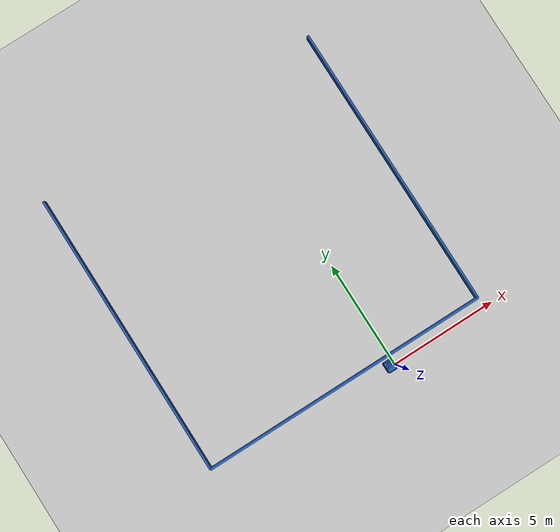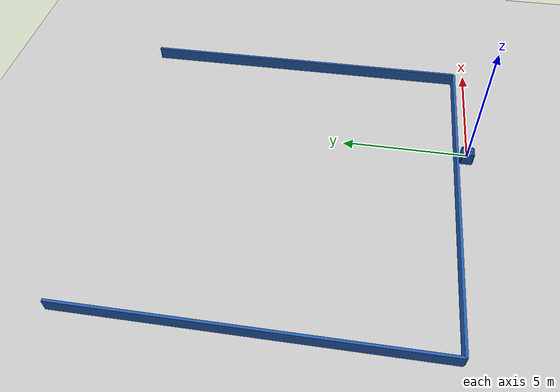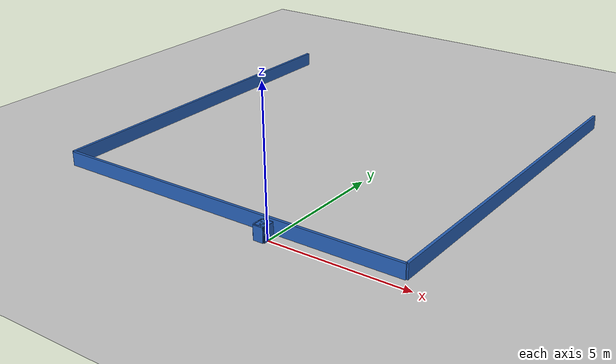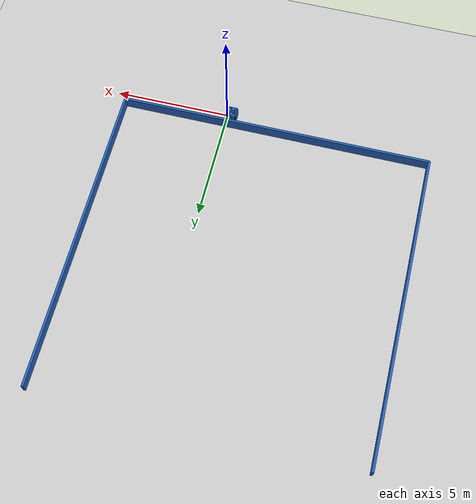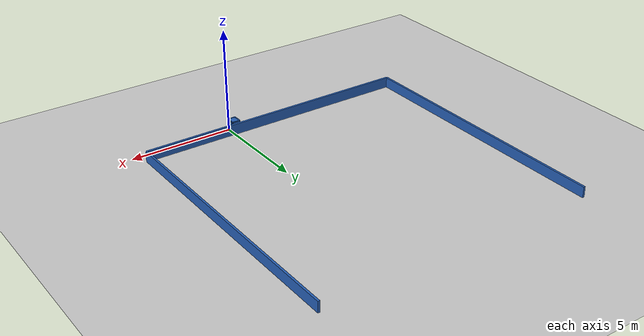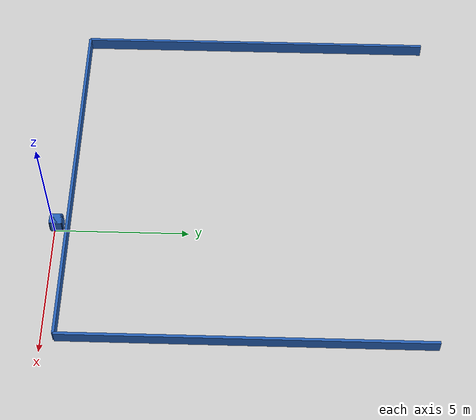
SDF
<?xml version="1.0" ?>
    <sdf version="1.5">
      <world name="default">
        <!-- A global light source -->
        <include>
          <uri>model://sun</uri>
        </include>
        <!-- A ground plane -->
        <include>
          <uri>model://ground_plane</uri>
        </include>

    <model name='libopen_space_final_T2B_83_66'>
      <static>1</static>
      <pose frame=''>-0.225000 0.075000 0.000000 0.000000 0.000000 0.000000</pose>
      <link name='link'>
        <inertial>
          <mass>1</mass>
          <inertia>
            <ixx>0.145833</ixx>
            <ixy>0</ixy>
            <ixz>0</ixz>
            <iyy>0.145833</iyy>
            <iyz>0</iyz>
            <izz>0.125</izz>
          </inertia>
        </inertial>
        <collision name='collision'>
          <geometry>
            <box>
              <size>0.33 0.37 1</size>
            </box>
          </geometry>
          <max_contacts>10</max_contacts>
          <surface>
            <contact>
              <ode/>
            </contact>
            <bounce/>
            <friction>
              <torsional>
                <ode/>
              </torsional>
              <ode/>
            </friction>
          </surface>
        </collision>
        <visual name='visual'>
          <geometry>
            <box>
              <size>0.33 0.37 1</size>
            </box>
          </geometry>
	    <material>
              <ambient>0.152000 0.379000 0.720000 1</ambient>
	      <diffuse>0.152000 0.379000 0.720000 1</diffuse>
          </material>
          <material>
            <script>
              <name>Gazebo/Grey</name>
              <uri>file://media/materials/scripts/gazebo.material</uri>
            </script>
          </material>
        </visual>
        <self_collide>0</self_collide>
        <kinematic>0</kinematic>
        <gravity>1</gravity>
      </link>
      <plugin name='libopen_space_final_T2B_83_66' filename='libopen_space_final_T2B_83_66.so'/>
    </model>

    <model name='libopen_space_final_T2B_67_46'>
      <static>1</static>
      <pose frame=''>-0.225000 0.075000 0.000000 0.000000 0.000000 0.000000</pose>
      <link name='link'>
        <inertial>
          <mass>1</mass>
          <inertia>
            <ixx>0.145833</ixx>
            <ixy>0</ixy>
            <ixz>0</ixz>
            <iyy>0.145833</iyy>
            <iyz>0</iyz>
            <izz>0.125</izz>
          </inertia>
        </inertial>
        <collision name='collision'>
          <geometry>
            <box>
              <size>0.12 0.33 1</size>
            </box>
          </geometry>
          <max_contacts>10</max_contacts>
          <surface>
            <contact>
              <ode/>
            </contact>
            <bounce/>
            <friction>
              <torsional>
                <ode/>
              </torsional>
              <ode/>
            </friction>
          </surface>
        </collision>
        <visual name='visual'>
          <geometry>
            <box>
              <size>0.12 0.33 1</size>
            </box>
          </geometry>
	    <material>
              <ambient>0.152000 0.379000 0.720000 1</ambient>
	      <diffuse>0.152000 0.379000 0.720000 1</diffuse>
          </material>
          <material>
            <script>
              <name>Gazebo/Grey</name>
              <uri>file://media/materials/scripts/gazebo.material</uri>
            </script>
          </material>
        </visual>
        <self_collide>0</self_collide>
        <kinematic>0</kinematic>
        <gravity>1</gravity>
      </link>
      <plugin name='libopen_space_final_T2B_67_46' filename='libopen_space_final_T2B_67_46.so'/>
    </model>

    <model name='libopen_space_final_T2B_57_10'>
      <static>1</static>
      <pose frame=''>-0.225000 0.075000 0.000000 0.000000 0.000000 0.000000</pose>
      <link name='link'>
        <inertial>
          <mass>1</mass>
          <inertia>
            <ixx>0.145833</ixx>
            <ixy>0</ixy>
            <ixz>0</ixz>
            <iyy>0.145833</iyy>
            <iyz>0</iyz>
            <izz>0.125</izz>
          </inertia>
        </inertial>
        <collision name='collision'>
          <geometry>
            <box>
              <size>0.12 0.27 1</size>
            </box>
          </geometry>
          <max_contacts>10</max_contacts>
          <surface>
            <contact>
              <ode/>
            </contact>
            <bounce/>
            <friction>
              <torsional>
                <ode/>
              </torsional>
              <ode/>
            </friction>
          </surface>
        </collision>
        <visual name='visual'>
          <geometry>
            <box>
              <size>0.12 0.27 1</size>
            </box>
          </geometry>
	    <material>
              <ambient>0.152000 0.379000 0.720000 1</ambient>
	      <diffuse>0.152000 0.379000 0.720000 1</diffuse>
          </material>
          <material>
            <script>
              <name>Gazebo/Grey</name>
              <uri>file://media/materials/scripts/gazebo.material</uri>
            </script>
          </material>
        </visual>
        <self_collide>0</self_collide>
        <kinematic>0</kinematic>
        <gravity>1</gravity>
      </link>
      <plugin name='libopen_space_final_T2B_57_10' filename='libopen_space_final_T2B_57_10.so'/>
    </model>

    <model name='libopen_space_final_T2B_80_70'>
      <static>1</static>
      <pose frame=''>-0.225000 0.075000 0.000000 0.000000 0.000000 0.000000</pose>
      <link name='link'>
        <inertial>
          <mass>1</mass>
          <inertia>
            <ixx>0.145833</ixx>
            <ixy>0</ixy>
            <ixz>0</ixz>
            <iyy>0.145833</iyy>
            <iyz>0</iyz>
            <izz>0.125</izz>
          </inertia>
        </inertial>
        <collision name='collision'>
          <geometry>
            <box>
              <size>0.37 0.40 1</size>
            </box>
          </geometry>
          <max_contacts>10</max_contacts>
          <surface>
            <contact>
              <ode/>
            </contact>
            <bounce/>
            <friction>
              <torsional>
                <ode/>
              </torsional>
              <ode/>
            </friction>
          </surface>
        </collision>
        <visual name='visual'>
          <geometry>
            <box>
              <size>0.37 0.40 1</size>
            </box>
          </geometry>
	    <material>
              <ambient>0.152000 0.379000 0.720000 1</ambient>
	      <diffuse>0.152000 0.379000 0.720000 1</diffuse>
          </material>
          <material>
            <script>
              <name>Gazebo/Grey</name>
              <uri>file://media/materials/scripts/gazebo.material</uri>
            </script>
          </material>
        </visual>
        <self_collide>0</self_collide>
        <kinematic>0</kinematic>
        <gravity>1</gravity>
      </link>
      <plugin name='libopen_space_final_T2B_80_70' filename='libopen_space_final_T2B_80_70.so'/>
    </model>

    <model name='libopen_space_final_T2B_111_18'>
      <static>1</static>
      <pose frame=''>-0.225000 0.075000 0.000000 0.000000 0.000000 0.000000</pose>
      <link name='link'>
        <inertial>
          <mass>1</mass>
          <inertia>
            <ixx>0.145833</ixx>
            <ixy>0</ixy>
            <ixz>0</ixz>
            <iyy>0.145833</iyy>
            <iyz>0</iyz>
            <izz>0.125</izz>
          </inertia>
        </inertial>
        <collision name='collision'>
          <geometry>
            <box>
              <size>0.37 0.50 1</size>
            </box>
          </geometry>
          <max_contacts>10</max_contacts>
          <surface>
            <contact>
              <ode/>
            </contact>
            <bounce/>
            <friction>
              <torsional>
                <ode/>
              </torsional>
              <ode/>
            </friction>
          </surface>
        </collision>
        <visual name='visual'>
          <geometry>
            <box>
              <size>0.37 0.50 1</size>
            </box>
          </geometry>
	    <material>
              <ambient>0.152000 0.379000 0.720000 1</ambient>
	      <diffuse>0.152000 0.379000 0.720000 1</diffuse>
          </material>
          <material>
            <script>
              <name>Gazebo/Grey</name>
              <uri>file://media/materials/scripts/gazebo.material</uri>
            </script>
          </material>
        </visual>
        <self_collide>0</self_collide>
        <kinematic>0</kinematic>
        <gravity>1</gravity>
      </link>
      <plugin name='libopen_space_final_T2B_111_18' filename='libopen_space_final_T2B_111_18.so'/>
    </model>

    <model name='libopen_space_final_T2B_81_89'>
      <static>1</static>
      <pose frame=''>-0.225000 0.075000 0.000000 0.000000 0.000000 0.000000</pose>
      <link name='link'>
        <inertial>
          <mass>1</mass>
          <inertia>
            <ixx>0.145833</ixx>
            <ixy>0</ixy>
            <ixz>0</ixz>
            <iyy>0.145833</iyy>
            <iyz>0</iyz>
            <izz>0.125</izz>
          </inertia>
        </inertial>
        <collision name='collision'>
          <geometry>
            <box>
              <size>0.28 0.11 1</size>
            </box>
          </geometry>
          <max_contacts>10</max_contacts>
          <surface>
            <contact>
              <ode/>
            </contact>
            <bounce/>
            <friction>
              <torsional>
                <ode/>
              </torsional>
              <ode/>
            </friction>
          </surface>
        </collision>
        <visual name='visual'>
          <geometry>
            <box>
              <size>0.28 0.11 1</size>
            </box>
          </geometry>
	    <material>
              <ambient>0.152000 0.379000 0.720000 1</ambient>
	      <diffuse>0.152000 0.379000 0.720000 1</diffuse>
          </material>
          <material>
            <script>
              <name>Gazebo/Grey</name>
              <uri>file://media/materials/scripts/gazebo.material</uri>
            </script>
          </material>
        </visual>
        <self_collide>0</self_collide>
        <kinematic>0</kinematic>
        <gravity>1</gravity>
      </link>
      <plugin name='libopen_space_final_T2B_81_89' filename='libopen_space_final_T2B_81_89.so'/>
    </model>

    <model name='libopen_space_final_T2B_92_34'>
      <static>1</static>
      <pose frame=''>-0.225000 0.075000 0.000000 0.000000 0.000000 0.000000</pose>
      <link name='link'>
        <inertial>
          <mass>1</mass>
          <inertia>
            <ixx>0.145833</ixx>
            <ixy>0</ixy>
            <ixz>0</ixz>
            <iyy>0.145833</iyy>
            <iyz>0</iyz>
            <izz>0.125</izz>
          </inertia>
        </inertial>
        <collision name='collision'>
          <geometry>
            <box>
              <size>0.45 0.42 1</size>
            </box>
          </geometry>
          <max_contacts>10</max_contacts>
          <surface>
            <contact>
              <ode/>
            </contact>
            <bounce/>
            <friction>
              <torsional>
                <ode/>
              </torsional>
              <ode/>
            </friction>
          </surface>
        </collision>
        <visual name='visual'>
          <geometry>
            <box>
              <size>0.45 0.42 1</size>
            </box>
          </geometry>
	    <material>
              <ambient>0.152000 0.379000 0.720000 1</ambient>
	      <diffuse>0.152000 0.379000 0.720000 1</diffuse>
          </material>
          <material>
            <script>
              <name>Gazebo/Grey</name>
              <uri>file://media/materials/scripts/gazebo.material</uri>
            </script>
          </material>
        </visual>
        <self_collide>0</self_collide>
        <kinematic>0</kinematic>
        <gravity>1</gravity>
      </link>
      <plugin name='libopen_space_final_T2B_92_34' filename='libopen_space_final_T2B_92_34.so'/>
    </model>

    <model name='libopen_space_final_T2B_115_72'>
      <static>1</static>
      <pose frame=''>-0.225000 0.075000 0.000000 0.000000 0.000000 0.000000</pose>
      <link name='link'>
        <inertial>
          <mass>1</mass>
          <inertia>
            <ixx>0.145833</ixx>
            <ixy>0</ixy>
            <ixz>0</ixz>
            <iyy>0.145833</iyy>
            <iyz>0</iyz>
            <izz>0.125</izz>
          </inertia>
        </inertial>
        <collision name='collision'>
          <geometry>
            <box>
              <size>0.40 0.45 1</size>
            </box>
          </geometry>
          <max_contacts>10</max_contacts>
          <surface>
            <contact>
              <ode/>
            </contact>
            <bounce/>
            <friction>
              <torsional>
                <ode/>
              </torsional>
              <ode/>
            </friction>
          </surface>
        </collision>
        <visual name='visual'>
          <geometry>
            <box>
              <size>0.40 0.45 1</size>
            </box>
          </geometry>
	    <material>
              <ambient>0.152000 0.379000 0.720000 1</ambient>
	      <diffuse>0.152000 0.379000 0.720000 1</diffuse>
          </material>
          <material>
            <script>
              <name>Gazebo/Grey</name>
              <uri>file://media/materials/scripts/gazebo.material</uri>
            </script>
          </material>
        </visual>
        <self_collide>0</self_collide>
        <kinematic>0</kinematic>
        <gravity>1</gravity>
      </link>
      <plugin name='libopen_space_final_T2B_115_72' filename='libopen_space_final_T2B_115_72.so'/>
    </model>

    <model name='libopen_space_final_T2B_122_2'>
      <static>1</static>
      <pose frame=''>-0.225000 0.075000 0.000000 0.000000 0.000000 0.000000</pose>
      <link name='link'>
        <inertial>
          <mass>1</mass>
          <inertia>
            <ixx>0.145833</ixx>
            <ixy>0</ixy>
            <ixz>0</ixz>
            <iyy>0.145833</iyy>
            <iyz>0</iyz>
            <izz>0.125</izz>
          </inertia>
        </inertial>
        <collision name='collision'>
          <geometry>
            <box>
              <size>0.40 0.45 1</size>
            </box>
          </geometry>
          <max_contacts>10</max_contacts>
          <surface>
            <contact>
              <ode/>
            </contact>
            <bounce/>
            <friction>
              <torsional>
                <ode/>
              </torsional>
              <ode/>
            </friction>
          </surface>
        </collision>
        <visual name='visual'>
          <geometry>
            <box>
              <size>0.40 0.45 1</size>
            </box>
          </geometry>
	    <material>
              <ambient>0.152000 0.379000 0.720000 1</ambient>
	      <diffuse>0.152000 0.379000 0.720000 1</diffuse>
          </material>
          <material>
            <script>
              <name>Gazebo/Grey</name>
              <uri>file://media/materials/scripts/gazebo.material</uri>
            </script>
          </material>
        </visual>
        <self_collide>0</self_collide>
        <kinematic>0</kinematic>
        <gravity>1</gravity>
      </link>
      <plugin name='libopen_space_final_T2B_122_2' filename='libopen_space_final_T2B_122_2.so'/>
    </model>

    <model name='libopen_space_final_T2B_91_57'>
      <static>1</static>
      <pose frame=''>-0.225000 0.075000 0.000000 0.000000 0.000000 0.000000</pose>
      <link name='link'>
        <inertial>
          <mass>1</mass>
          <inertia>
            <ixx>0.145833</ixx>
            <ixy>0</ixy>
            <ixz>0</ixz>
            <iyy>0.145833</iyy>
            <iyz>0</iyz>
            <izz>0.125</izz>
          </inertia>
        </inertial>
        <collision name='collision'>
          <geometry>
            <box>
              <size>0.16 0.17 1</size>
            </box>
          </geometry>
          <max_contacts>10</max_contacts>
          <surface>
            <contact>
              <ode/>
            </contact>
            <bounce/>
            <friction>
              <torsional>
                <ode/>
              </torsional>
              <ode/>
            </friction>
          </surface>
        </collision>
        <visual name='visual'>
          <geometry>
            <box>
              <size>0.16 0.17 1</size>
            </box>
          </geometry>
	    <material>
              <ambient>0.152000 0.379000 0.720000 1</ambient>
	      <diffuse>0.152000 0.379000 0.720000 1</diffuse>
          </material>
          <material>
            <script>
              <name>Gazebo/Grey</name>
              <uri>file://media/materials/scripts/gazebo.material</uri>
            </script>
          </material>
        </visual>
        <self_collide>0</self_collide>
        <kinematic>0</kinematic>
        <gravity>1</gravity>
      </link>
      <plugin name='libopen_space_final_T2B_91_57' filename='libopen_space_final_T2B_91_57.so'/>
    </model>

        <model name='bottom_wall'>
          <static>1</static>
          <pose frame=''>-2.25 0.5 0.000000 0.000000 0.000000 1.57079632</pose>
          <link name='link'>
            <inertial>
            <mass>1</mass>
            <inertia>
              <ixx>0.145833</ixx>
              <ixy>0</ixy>
              <ixz>0</ixz>
              <iyy>0.145833</iyy>
              <iyz>0</iyz>
              <izz>0.125</izz>
            </inertia>
            </inertial>
            <collision name='collision'>
            <geometry>
              <box>
              <size>0.1 13.5 1</size>
              </box>
            </geometry>
            <max_contacts>10</max_contacts>
            <surface>
              <contact>
              <ode/>
              </contact>
              <bounce/>
              <friction>
              <torsional>
                <ode/>
              </torsional>
              <ode/>
              </friction>
            </surface>
            </collision>
            <visual name='visual'>
            <geometry>
              <box>
              <size>0.1 13.5 1</size>
              </box>
            </geometry>
            <material>
              <ambient>0.152000 0.379000 0.720000 1</ambient>
            <diffuse>0.152000 0.379000 0.720000 1</diffuse>
            </material>
            <material>
              <script>
              <name>Gazebo/Grey</name>
              <uri>file://media/materials/scripts/gazebo.material</uri>
              </script>
            </material>
            </visual>
            <self_collide>0</self_collide>
            <kinematic>0</kinematic>
            <gravity>1</gravity>
          </link>
        </model>

        <model name='left_wall'>
          <static>1</static>
          <pose frame=''>-9 7.25 0.000000 0.000000 0.000000 0.000000</pose>
          <link name='link'>
            <inertial>
            <mass>1</mass>
            <inertia>
              <ixx>0.145833</ixx>
              <ixy>0</ixy>
              <ixz>0</ixz>
              <iyy>0.145833</iyy>
              <iyz>0</iyz>
              <izz>0.125</izz>
            </inertia>
            </inertial>
            <collision name='collision'>
            <geometry>
              <box>
              <size>0.1 13.5 1</size>
              </box>
            </geometry>
            <max_contacts>10</max_contacts>
            <surface>
              <contact>
              <ode/>
              </contact>
              <bounce/>
              <friction>
              <torsional>
                <ode/>
              </torsional>
              <ode/>
              </friction>
            </surface>
            </collision>
            <visual name='visual'>
            <geometry>
              <box>
              <size>0.1 13.5 1</size>
              </box>
            </geometry>
            <material>
              <ambient>0.152000 0.379000 0.720000 1</ambient>
            <diffuse>0.152000 0.379000 0.720000 1</diffuse>
            </material>
            <material>
              <script>
              <name>Gazebo/Grey</name>
              <uri>file://media/materials/scripts/gazebo.material</uri>
              </script>
            </material>
            </visual>
            <self_collide>0</self_collide>
            <kinematic>0</kinematic>
            <gravity>1</gravity>
          </link>
        </model>

        <model name='right_wall'>
          <static>1</static>
          <pose frame=''>4.5 7.25 0.000000 0.000000 0.000000 0.000000</pose>
          <link name='link'>
            <inertial>
            <mass>1</mass>
            <inertia>
              <ixx>0.145833</ixx>
              <ixy>0</ixy>
              <ixz>0</ixz>
              <iyy>0.145833</iyy>
              <iyz>0</iyz>
              <izz>0.125</izz>
            </inertia>
            </inertial>
            <collision name='collision'>
            <geometry>
              <box>
              <size>0.1 13.5 1</size>
              </box>
            </geometry>
            <max_contacts>10</max_contacts>
            <surface>
              <contact>
              <ode/>
              </contact>
              <bounce/>
              <friction>
              <torsional>
                <ode/>
              </torsional>
              <ode/>
              </friction>
            </surface>
            </collision>
            <visual name='visual'>
            <geometry>
              <box>
              <size>0.1 13.5 1</size>
              </box>
            </geometry>
            <material>
              <ambient>0.152000 0.379000 0.720000 1</ambient>
            <diffuse>0.152000 0.379000 0.720000 1</diffuse>
            </material>
            <material>
              <script>
              <name>Gazebo/Grey</name>
              <uri>file://media/materials/scripts/gazebo.material</uri>
              </script>
            </material>
            </visual>
            <self_collide>0</self_collide>
            <kinematic>0</kinematic>
            <gravity>1</gravity>
          </link>
        </model>

      </world>
    </sdf>"
